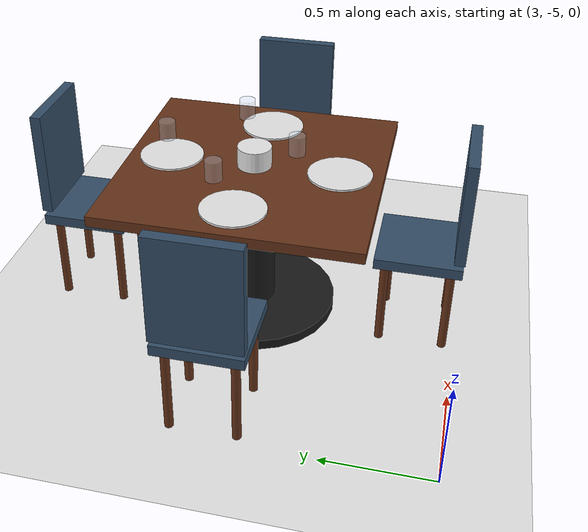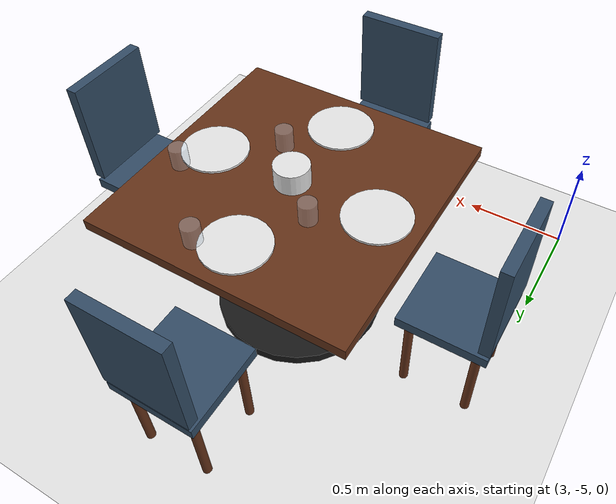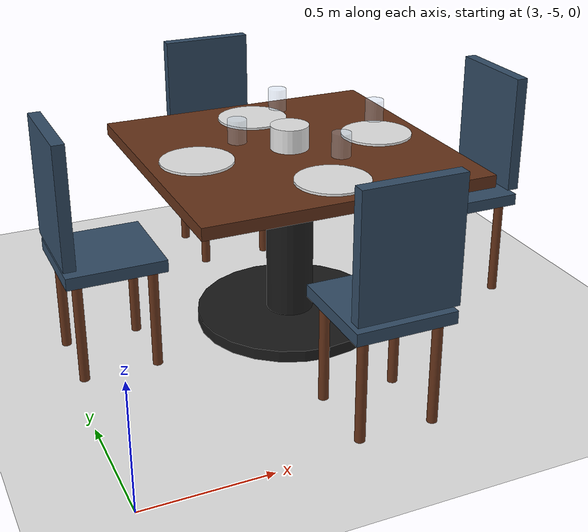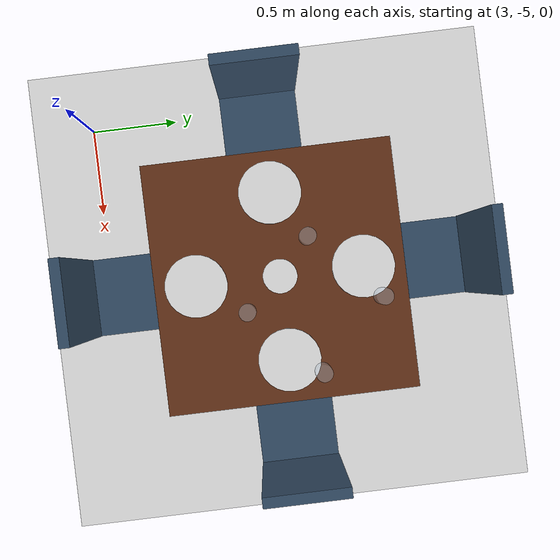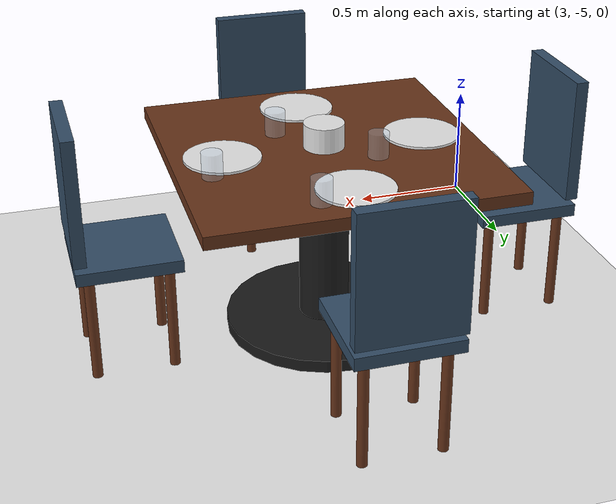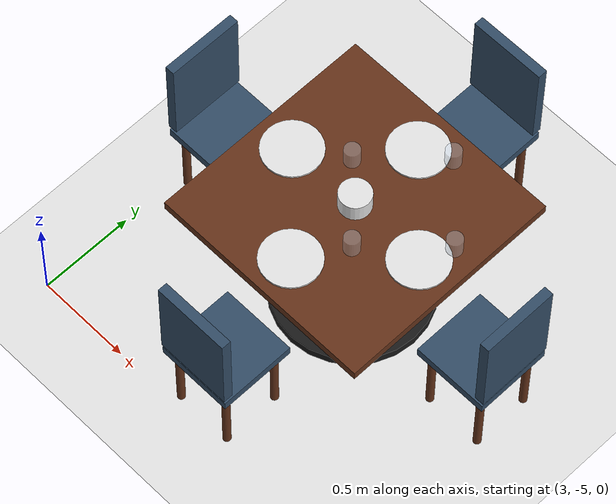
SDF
<sdf version="1.9">
 <world name="argo_restaurant">
  <model name="ground_plane">
   <static>true</static>
   <link name="link">
    <collision name="collision">
     <geometry><plane><normal>0 0 1</normal><size>100 100</size></plane></geometry>
    </collision>
    <visual name="visual">
     <geometry><plane><normal>0 0 1</normal><size>100 100</size></plane></geometry>
     <material>
      <ambient>0.9 0.9 0.9 1</ambient>
      <diffuse>0.9 0.9 0.9 1</diffuse>
      <specular>0.1 0.1 0.1 1</specular>
      <pbr><metal><roughness>0.1</roughness><metalness>0.0</metalness></metal></pbr>
     </material>
    </visual>
   </link>
  </model>
  <model name="table_2">
   <static>true</static>
   <link name="top_link">
    <pose>4.0 -4.0 0.75 0 0 0</pose>
    <collision name="top_collision"><geometry><box><size>1.2 1.2 0.05</size></box></geometry></collision>
    <visual name="top_visual">
     <geometry><box><size>1.2 1.2 0.05</size></box></geometry>
     <material>
      <ambient>0.4 0.2 0.1 1</ambient>
      <diffuse>0.4 0.2 0.1 1</diffuse>
      <specular>0.1 0.1 0.1 1</specular>
      <pbr><metal><roughness>0.7</roughness><metalness>0.1</metalness></metal></pbr>
     </material>
    </visual>
   </link>
   <link name="leg_link">
    <pose>4.0 -4.0 0.375 0 0 0</pose>
    <collision name="leg_collision">
     <geometry><cylinder><radius>0.1</radius><length>0.75</length></cylinder></geometry>
    </collision>
    <visual name="leg_visual">
     <geometry><cylinder><radius>0.1</radius><length>0.75</length></cylinder></geometry>
     <material>
      <ambient>0.1 0.1 0.1 1</ambient>
      <diffuse>0.1 0.1 0.1 1</diffuse>
      <specular>0.1 0.1 0.1 1</specular>
      <pbr><metal><roughness>0.5</roughness><metalness>0.0</metalness></metal></pbr>
     </material>
    </visual>
   </link>
   <link name="base_link">
    <pose>4.0 -4.0 0.025 0 0 0</pose>
    <collision name="base_collision">
     <geometry><cylinder><radius>0.4</radius><length>0.05</length></cylinder></geometry>
    </collision>
    <visual name="base_visual">
     <geometry><cylinder><radius>0.4</radius><length>0.05</length></cylinder></geometry>
     <material>
      <ambient>0.1 0.1 0.1 1</ambient>
      <diffuse>0.1 0.1 0.1 1</diffuse>
      <specular>0.1 0.1 0.1 1</specular>
      <pbr><metal><roughness>0.5</roughness><metalness>0.0</metalness></metal></pbr>
     </material>
    </visual>
   </link>
   <link name="chair_0_seat_link">
    <pose>4.0 -3.2 0.45 0 0 0</pose>
    <collision name="chair_0_seat_collision"><geometry><box><size>0.4 0.4 0.05</size></box></geometry></collision>
    <visual name="chair_0_seat_visual">
     <geometry><box><size>0.4 0.4 0.05</size></box></geometry>
     <material>
      <ambient>0.2 0.3 0.4 1</ambient>
      <diffuse>0.2 0.3 0.4 1</diffuse>
      <specular>0.1 0.1 0.1 1</specular>
      <pbr><metal><roughness>0.9</roughness><metalness>0.0</metalness></metal></pbr>
     </material>
    </visual>
   </link>
   <link name="chair_0_leg_-0.15_-0.15_link">
    <pose>3.85 -3.35 0.225 0 0 0</pose>
    <collision name="chair_0_leg_-0.15_-0.15_collision">
     <geometry><cylinder><radius>0.02</radius><length>0.45</length></cylinder></geometry>
    </collision>
    <visual name="chair_0_leg_-0.15_-0.15_visual">
     <geometry><cylinder><radius>0.02</radius><length>0.45</length></cylinder></geometry>
     <material>
      <ambient>0.4 0.2 0.1 1</ambient>
      <diffuse>0.4 0.2 0.1 1</diffuse>
      <specular>0.1 0.1 0.1 1</specular>
      <pbr><metal><roughness>0.7</roughness><metalness>0.1</metalness></metal></pbr>
     </material>
    </visual>
   </link>
   <link name="chair_0_leg_0.15_-0.15_link">
    <pose>4.15 -3.35 0.225 0 0 0</pose>
    <collision name="chair_0_leg_0.15_-0.15_collision">
     <geometry><cylinder><radius>0.02</radius><length>0.45</length></cylinder></geometry>
    </collision>
    <visual name="chair_0_leg_0.15_-0.15_visual">
     <geometry><cylinder><radius>0.02</radius><length>0.45</length></cylinder></geometry>
     <material>
      <ambient>0.4 0.2 0.1 1</ambient>
      <diffuse>0.4 0.2 0.1 1</diffuse>
      <specular>0.1 0.1 0.1 1</specular>
      <pbr><metal><roughness>0.7</roughness><metalness>0.1</metalness></metal></pbr>
     </material>
    </visual>
   </link>
   <link name="chair_0_leg_-0.15_0.15_link">
    <pose>3.85 -3.0500000000000003 0.225 0 0 0</pose>
    <collision name="chair_0_leg_-0.15_0.15_collision">
     <geometry><cylinder><radius>0.02</radius><length>0.45</length></cylinder></geometry>
    </collision>
    <visual name="chair_0_leg_-0.15_0.15_visual">
     <geometry><cylinder><radius>0.02</radius><length>0.45</length></cylinder></geometry>
     <material>
      <ambient>0.4 0.2 0.1 1</ambient>
      <diffuse>0.4 0.2 0.1 1</diffuse>
      <specular>0.1 0.1 0.1 1</specular>
      <pbr><metal><roughness>0.7</roughness><metalness>0.1</metalness></metal></pbr>
     </material>
    </visual>
   </link>
   <link name="chair_0_leg_0.15_0.15_link">
    <pose>4.15 -3.0500000000000003 0.225 0 0 0</pose>
    <collision name="chair_0_leg_0.15_0.15_collision">
     <geometry><cylinder><radius>0.02</radius><length>0.45</length></cylinder></geometry>
    </collision>
    <visual name="chair_0_leg_0.15_0.15_visual">
     <geometry><cylinder><radius>0.02</radius><length>0.45</length></cylinder></geometry>
     <material>
      <ambient>0.4 0.2 0.1 1</ambient>
      <diffuse>0.4 0.2 0.1 1</diffuse>
      <specular>0.1 0.1 0.1 1</specular>
      <pbr><metal><roughness>0.7</roughness><metalness>0.1</metalness></metal></pbr>
     </material>
    </visual>
   </link>
   <link name="chair_0_back_link">
    <pose>4.0 -3.02 0.75 0 0 0</pose>
    <collision name="chair_0_back_collision"><geometry><box><size>0.4 0.05 0.5</size></box></geometry></collision>
    <visual name="chair_0_back_visual">
     <geometry><box><size>0.4 0.05 0.5</size></box></geometry>
     <material>
      <ambient>0.2 0.3 0.4 1</ambient>
      <diffuse>0.2 0.3 0.4 1</diffuse>
      <specular>0.1 0.1 0.1 1</specular>
      <pbr><metal><roughness>0.9</roughness><metalness>0.0</metalness></metal></pbr>
     </material>
    </visual>
   </link>
   <link name="chair_1_seat_link">
    <pose>4.0 -4.8 0.45 0 0 3.1415</pose>
    <collision name="chair_1_seat_collision"><geometry><box><size>0.4 0.4 0.05</size></box></geometry></collision>
    <visual name="chair_1_seat_visual">
     <geometry><box><size>0.4 0.4 0.05</size></box></geometry>
     <material>
      <ambient>0.2 0.3 0.4 1</ambient>
      <diffuse>0.2 0.3 0.4 1</diffuse>
      <specular>0.1 0.1 0.1 1</specular>
      <pbr><metal><roughness>0.9</roughness><metalness>0.0</metalness></metal></pbr>
     </material>
    </visual>
   </link>
   <link name="chair_1_leg_-0.15_-0.15_link">
    <pose>3.85 -4.95 0.225 0 0 0</pose>
    <collision name="chair_1_leg_-0.15_-0.15_collision">
     <geometry><cylinder><radius>0.02</radius><length>0.45</length></cylinder></geometry>
    </collision>
    <visual name="chair_1_leg_-0.15_-0.15_visual">
     <geometry><cylinder><radius>0.02</radius><length>0.45</length></cylinder></geometry>
     <material>
      <ambient>0.4 0.2 0.1 1</ambient>
      <diffuse>0.4 0.2 0.1 1</diffuse>
      <specular>0.1 0.1 0.1 1</specular>
      <pbr><metal><roughness>0.7</roughness><metalness>0.1</metalness></metal></pbr>
     </material>
    </visual>
   </link>
   <link name="chair_1_leg_0.15_-0.15_link">
    <pose>4.15 -4.95 0.225 0 0 0</pose>
    <collision name="chair_1_leg_0.15_-0.15_collision">
     <geometry><cylinder><radius>0.02</radius><length>0.45</length></cylinder></geometry>
    </collision>
    <visual name="chair_1_leg_0.15_-0.15_visual">
     <geometry><cylinder><radius>0.02</radius><length>0.45</length></cylinder></geometry>
     <material>
      <ambient>0.4 0.2 0.1 1</ambient>
      <diffuse>0.4 0.2 0.1 1</diffuse>
      <specular>0.1 0.1 0.1 1</specular>
      <pbr><metal><roughness>0.7</roughness><metalness>0.1</metalness></metal></pbr>
     </material>
    </visual>
   </link>
   <link name="chair_1_leg_-0.15_0.15_link">
    <pose>3.85 -4.6499999999999995 0.225 0 0 0</pose>
    <collision name="chair_1_leg_-0.15_0.15_collision">
     <geometry><cylinder><radius>0.02</radius><length>0.45</length></cylinder></geometry>
    </collision>
    <visual name="chair_1_leg_-0.15_0.15_visual">
     <geometry><cylinder><radius>0.02</radius><length>0.45</length></cylinder></geometry>
     <material>
      <ambient>0.4 0.2 0.1 1</ambient>
      <diffuse>0.4 0.2 0.1 1</diffuse>
      <specular>0.1 0.1 0.1 1</specular>
      <pbr><metal><roughness>0.7</roughness><metalness>0.1</metalness></metal></pbr>
     </material>
    </visual>
   </link>
   <link name="chair_1_leg_0.15_0.15_link">
    <pose>4.15 -4.6499999999999995 0.225 0 0 0</pose>
    <collision name="chair_1_leg_0.15_0.15_collision">
     <geometry><cylinder><radius>0.02</radius><length>0.45</length></cylinder></geometry>
    </collision>
    <visual name="chair_1_leg_0.15_0.15_visual">
     <geometry><cylinder><radius>0.02</radius><length>0.45</length></cylinder></geometry>
     <material>
      <ambient>0.4 0.2 0.1 1</ambient>
      <diffuse>0.4 0.2 0.1 1</diffuse>
      <specular>0.1 0.1 0.1 1</specular>
      <pbr><metal><roughness>0.7</roughness><metalness>0.1</metalness></metal></pbr>
     </material>
    </visual>
   </link>
   <link name="chair_1_back_link">
    <pose>3.9999833223538612 -4.979999999227378 0.75 0 0 3.1415</pose>
    <collision name="chair_1_back_collision"><geometry><box><size>0.4 0.05 0.5</size></box></geometry></collision>
    <visual name="chair_1_back_visual">
     <geometry><box><size>0.4 0.05 0.5</size></box></geometry>
     <material>
      <ambient>0.2 0.3 0.4 1</ambient>
      <diffuse>0.2 0.3 0.4 1</diffuse>
      <specular>0.1 0.1 0.1 1</specular>
      <pbr><metal><roughness>0.9</roughness><metalness>0.0</metalness></metal></pbr>
     </material>
    </visual>
   </link>
   <link name="chair_2_seat_link">
    <pose>4.8 -4.0 0.45 0 0 -1.5707</pose>
    <collision name="chair_2_seat_collision"><geometry><box><size>0.4 0.4 0.05</size></box></geometry></collision>
    <visual name="chair_2_seat_visual">
     <geometry><box><size>0.4 0.4 0.05</size></box></geometry>
     <material>
      <ambient>0.2 0.3 0.4 1</ambient>
      <diffuse>0.2 0.3 0.4 1</diffuse>
      <specular>0.1 0.1 0.1 1</specular>
      <pbr><metal><roughness>0.9</roughness><metalness>0.0</metalness></metal></pbr>
     </material>
    </visual>
   </link>
   <link name="chair_2_leg_-0.15_-0.15_link">
    <pose>4.6499999999999995 -4.15 0.225 0 0 0</pose>
    <collision name="chair_2_leg_-0.15_-0.15_collision">
     <geometry><cylinder><radius>0.02</radius><length>0.45</length></cylinder></geometry>
    </collision>
    <visual name="chair_2_leg_-0.15_-0.15_visual">
     <geometry><cylinder><radius>0.02</radius><length>0.45</length></cylinder></geometry>
     <material>
      <ambient>0.4 0.2 0.1 1</ambient>
      <diffuse>0.4 0.2 0.1 1</diffuse>
      <specular>0.1 0.1 0.1 1</specular>
      <pbr><metal><roughness>0.7</roughness><metalness>0.1</metalness></metal></pbr>
     </material>
    </visual>
   </link>
   <link name="chair_2_leg_0.15_-0.15_link">
    <pose>4.95 -4.15 0.225 0 0 0</pose>
    <collision name="chair_2_leg_0.15_-0.15_collision">
     <geometry><cylinder><radius>0.02</radius><length>0.45</length></cylinder></geometry>
    </collision>
    <visual name="chair_2_leg_0.15_-0.15_visual">
     <geometry><cylinder><radius>0.02</radius><length>0.45</length></cylinder></geometry>
     <material>
      <ambient>0.4 0.2 0.1 1</ambient>
      <diffuse>0.4 0.2 0.1 1</diffuse>
      <specular>0.1 0.1 0.1 1</specular>
      <pbr><metal><roughness>0.7</roughness><metalness>0.1</metalness></metal></pbr>
     </material>
    </visual>
   </link>
   <link name="chair_2_leg_-0.15_0.15_link">
    <pose>4.6499999999999995 -3.85 0.225 0 0 0</pose>
    <collision name="chair_2_leg_-0.15_0.15_collision">
     <geometry><cylinder><radius>0.02</radius><length>0.45</length></cylinder></geometry>
    </collision>
    <visual name="chair_2_leg_-0.15_0.15_visual">
     <geometry><cylinder><radius>0.02</radius><length>0.45</length></cylinder></geometry>
     <material>
      <ambient>0.4 0.2 0.1 1</ambient>
      <diffuse>0.4 0.2 0.1 1</diffuse>
      <specular>0.1 0.1 0.1 1</specular>
      <pbr><metal><roughness>0.7</roughness><metalness>0.1</metalness></metal></pbr>
     </material>
    </visual>
   </link>
   <link name="chair_2_leg_0.15_0.15_link">
    <pose>4.95 -3.85 0.225 0 0 0</pose>
    <collision name="chair_2_leg_0.15_0.15_collision">
     <geometry><cylinder><radius>0.02</radius><length>0.45</length></cylinder></geometry>
    </collision>
    <visual name="chair_2_leg_0.15_0.15_visual">
     <geometry><cylinder><radius>0.02</radius><length>0.45</length></cylinder></geometry>
     <material>
      <ambient>0.4 0.2 0.1 1</ambient>
      <diffuse>0.4 0.2 0.1 1</diffuse>
      <specular>0.1 0.1 0.1 1</specular>
      <pbr><metal><roughness>0.7</roughness><metalness>0.1</metalness></metal></pbr>
     </material>
    </visual>
   </link>
   <link name="chair_2_back_link">
    <pose>4.979999999164903 -3.9999826611769453 0.75 0 0 -1.5707</pose>
    <collision name="chair_2_back_collision"><geometry><box><size>0.4 0.05 0.5</size></box></geometry></collision>
    <visual name="chair_2_back_visual">
     <geometry><box><size>0.4 0.05 0.5</size></box></geometry>
     <material>
      <ambient>0.2 0.3 0.4 1</ambient>
      <diffuse>0.2 0.3 0.4 1</diffuse>
      <specular>0.1 0.1 0.1 1</specular>
      <pbr><metal><roughness>0.9</roughness><metalness>0.0</metalness></metal></pbr>
     </material>
    </visual>
   </link>
   <link name="chair_3_seat_link">
    <pose>3.2 -4.0 0.45 0 0 1.5707</pose>
    <collision name="chair_3_seat_collision"><geometry><box><size>0.4 0.4 0.05</size></box></geometry></collision>
    <visual name="chair_3_seat_visual">
     <geometry><box><size>0.4 0.4 0.05</size></box></geometry>
     <material>
      <ambient>0.2 0.3 0.4 1</ambient>
      <diffuse>0.2 0.3 0.4 1</diffuse>
      <specular>0.1 0.1 0.1 1</specular>
      <pbr><metal><roughness>0.9</roughness><metalness>0.0</metalness></metal></pbr>
     </material>
    </visual>
   </link>
   <link name="chair_3_leg_-0.15_-0.15_link">
    <pose>3.0500000000000003 -4.15 0.225 0 0 0</pose>
    <collision name="chair_3_leg_-0.15_-0.15_collision">
     <geometry><cylinder><radius>0.02</radius><length>0.45</length></cylinder></geometry>
    </collision>
    <visual name="chair_3_leg_-0.15_-0.15_visual">
     <geometry><cylinder><radius>0.02</radius><length>0.45</length></cylinder></geometry>
     <material>
      <ambient>0.4 0.2 0.1 1</ambient>
      <diffuse>0.4 0.2 0.1 1</diffuse>
      <specular>0.1 0.1 0.1 1</specular>
      <pbr><metal><roughness>0.7</roughness><metalness>0.1</metalness></metal></pbr>
     </material>
    </visual>
   </link>
   <link name="chair_3_leg_0.15_-0.15_link">
    <pose>3.35 -4.15 0.225 0 0 0</pose>
    <collision name="chair_3_leg_0.15_-0.15_collision">
     <geometry><cylinder><radius>0.02</radius><length>0.45</length></cylinder></geometry>
    </collision>
    <visual name="chair_3_leg_0.15_-0.15_visual">
     <geometry><cylinder><radius>0.02</radius><length>0.45</length></cylinder></geometry>
     <material>
      <ambient>0.4 0.2 0.1 1</ambient>
      <diffuse>0.4 0.2 0.1 1</diffuse>
      <specular>0.1 0.1 0.1 1</specular>
      <pbr><metal><roughness>0.7</roughness><metalness>0.1</metalness></metal></pbr>
     </material>
    </visual>
   </link>
   <link name="chair_3_leg_-0.15_0.15_link">
    <pose>3.0500000000000003 -3.85 0.225 0 0 0</pose>
    <collision name="chair_3_leg_-0.15_0.15_collision">
     <geometry><cylinder><radius>0.02</radius><length>0.45</length></cylinder></geometry>
    </collision>
    <visual name="chair_3_leg_-0.15_0.15_visual">
     <geometry><cylinder><radius>0.02</radius><length>0.45</length></cylinder></geometry>
     <material>
      <ambient>0.4 0.2 0.1 1</ambient>
      <diffuse>0.4 0.2 0.1 1</diffuse>
      <specular>0.1 0.1 0.1 1</specular>
      <pbr><metal><roughness>0.7</roughness><metalness>0.1</metalness></metal></pbr>
     </material>
    </visual>
   </link>
   <link name="chair_3_leg_0.15_0.15_link">
    <pose>3.35 -3.85 0.225 0 0 0</pose>
    <collision name="chair_3_leg_0.15_0.15_collision">
     <geometry><cylinder><radius>0.02</radius><length>0.45</length></cylinder></geometry>
    </collision>
    <visual name="chair_3_leg_0.15_0.15_visual">
     <geometry><cylinder><radius>0.02</radius><length>0.45</length></cylinder></geometry>
     <material>
      <ambient>0.4 0.2 0.1 1</ambient>
      <diffuse>0.4 0.2 0.1 1</diffuse>
      <specular>0.1 0.1 0.1 1</specular>
      <pbr><metal><roughness>0.7</roughness><metalness>0.1</metalness></metal></pbr>
     </material>
    </visual>
   </link>
   <link name="chair_3_back_link">
    <pose>3.020000000835097 -3.9999826611769453 0.75 0 0 1.5707</pose>
    <collision name="chair_3_back_collision"><geometry><box><size>0.4 0.05 0.5</size></box></geometry></collision>
    <visual name="chair_3_back_visual">
     <geometry><box><size>0.4 0.05 0.5</size></box></geometry>
     <material>
      <ambient>0.2 0.3 0.4 1</ambient>
      <diffuse>0.2 0.3 0.4 1</diffuse>
      <specular>0.1 0.1 0.1 1</specular>
      <pbr><metal><roughness>0.9</roughness><metalness>0.0</metalness></metal></pbr>
     </material>
    </visual>
   </link>
   <link name="centerpiece_pot_link">
    <pose>4.0 -4.0 0.825 0 0 0</pose>
    <collision name="centerpiece_pot_collision">
     <geometry><cylinder><radius>0.08</radius><length>0.1</length></cylinder></geometry>
    </collision>
    <visual name="centerpiece_pot_visual">
     <geometry><cylinder><radius>0.08</radius><length>0.1</length></cylinder></geometry>
     <material>
      <ambient>0.9 0.9 0.9 1</ambient>
      <diffuse>0.9 0.9 0.9 1</diffuse>
      <specular>0.1 0.1 0.1 1</specular>
      <pbr><metal><roughness>0.2</roughness><metalness>0.0</metalness></metal></pbr>
     </material>
    </visual>
   </link>
   <link name="plate_0_link">
    <pose>4.0 -3.6 0.78 0 0 0</pose>
    <collision name="plate_0_collision">
     <geometry><cylinder><radius>0.15</radius><length>0.01</length></cylinder></geometry>
    </collision>
    <visual name="plate_0_visual">
     <geometry><cylinder><radius>0.15</radius><length>0.01</length></cylinder></geometry>
     <material>
      <ambient>0.9 0.9 0.9 1</ambient>
      <diffuse>0.9 0.9 0.9 1</diffuse>
      <specular>0.1 0.1 0.1 1</specular>
      <pbr><metal><roughness>0.2</roughness><metalness>0.0</metalness></metal></pbr>
     </material>
    </visual>
   </link>
   <link name="glass_0_link">
    <pose>4.15 -3.53 0.825 0 0 0</pose>
    <collision name="glass_0_collision">
     <geometry><cylinder><radius>0.04</radius><length>0.1</length></cylinder></geometry>
    </collision>
    <visual name="glass_0_visual">
     <geometry><cylinder><radius>0.04</radius><length>0.1</length></cylinder></geometry>
     <material>
      <ambient>0.8 0.9 1.0 0.3</ambient>
      <diffuse>0.8 0.9 1.0 0.3</diffuse>
      <specular>0.9 0.9 0.9 1</specular>
      <pbr><metal><roughness>0.0</roughness><metalness>0.9</metalness></metal></pbr>
     </material>
    </visual>
   </link>
   <link name="plate_1_link">
    <pose>4.0 -4.4 0.78 0 0 0</pose>
    <collision name="plate_1_collision">
     <geometry><cylinder><radius>0.15</radius><length>0.01</length></cylinder></geometry>
    </collision>
    <visual name="plate_1_visual">
     <geometry><cylinder><radius>0.15</radius><length>0.01</length></cylinder></geometry>
     <material>
      <ambient>0.9 0.9 0.9 1</ambient>
      <diffuse>0.9 0.9 0.9 1</diffuse>
      <specular>0.1 0.1 0.1 1</specular>
      <pbr><metal><roughness>0.2</roughness><metalness>0.0</metalness></metal></pbr>
     </material>
    </visual>
   </link>
   <link name="glass_1_link">
    <pose>4.15 -4.17 0.825 0 0 0</pose>
    <collision name="glass_1_collision">
     <geometry><cylinder><radius>0.04</radius><length>0.1</length></cylinder></geometry>
    </collision>
    <visual name="glass_1_visual">
     <geometry><cylinder><radius>0.04</radius><length>0.1</length></cylinder></geometry>
     <material>
      <ambient>0.8 0.9 1.0 0.3</ambient>
      <diffuse>0.8 0.9 1.0 0.3</diffuse>
      <specular>0.9 0.9 0.9 1</specular>
      <pbr><metal><roughness>0.0</roughness><metalness>0.9</metalness></metal></pbr>
     </material>
    </visual>
   </link>
   <link name="plate_2_link">
    <pose>4.4 -4.0 0.78 0 0 0</pose>
    <collision name="plate_2_collision">
     <geometry><cylinder><radius>0.15</radius><length>0.01</length></cylinder></geometry>
    </collision>
    <visual name="plate_2_visual">
     <geometry><cylinder><radius>0.15</radius><length>0.01</length></cylinder></geometry>
     <material>
      <ambient>0.9 0.9 0.9 1</ambient>
      <diffuse>0.9 0.9 0.9 1</diffuse>
      <specular>0.1 0.1 0.1 1</specular>
      <pbr><metal><roughness>0.2</roughness><metalness>0.0</metalness></metal></pbr>
     </material>
    </visual>
   </link>
   <link name="glass_2_link">
    <pose>4.47 -3.85 0.825 0 0 0</pose>
    <collision name="glass_2_collision">
     <geometry><cylinder><radius>0.04</radius><length>0.1</length></cylinder></geometry>
    </collision>
    <visual name="glass_2_visual">
     <geometry><cylinder><radius>0.04</radius><length>0.1</length></cylinder></geometry>
     <material>
      <ambient>0.8 0.9 1.0 0.3</ambient>
      <diffuse>0.8 0.9 1.0 0.3</diffuse>
      <specular>0.9 0.9 0.9 1</specular>
      <pbr><metal><roughness>0.0</roughness><metalness>0.9</metalness></metal></pbr>
     </material>
    </visual>
   </link>
   <link name="plate_3_link">
    <pose>3.6 -4.0 0.78 0 0 0</pose>
    <collision name="plate_3_collision">
     <geometry><cylinder><radius>0.15</radius><length>0.01</length></cylinder></geometry>
    </collision>
    <visual name="plate_3_visual">
     <geometry><cylinder><radius>0.15</radius><length>0.01</length></cylinder></geometry>
     <material>
      <ambient>0.9 0.9 0.9 1</ambient>
      <diffuse>0.9 0.9 0.9 1</diffuse>
      <specular>0.1 0.1 0.1 1</specular>
      <pbr><metal><roughness>0.2</roughness><metalness>0.0</metalness></metal></pbr>
     </material>
    </visual>
   </link>
   <link name="glass_3_link">
    <pose>3.83 -3.85 0.825 0 0 0</pose>
    <collision name="glass_3_collision">
     <geometry><cylinder><radius>0.04</radius><length>0.1</length></cylinder></geometry>
    </collision>
    <visual name="glass_3_visual">
     <geometry><cylinder><radius>0.04</radius><length>0.1</length></cylinder></geometry>
     <material>
      <ambient>0.8 0.9 1.0 0.3</ambient>
      <diffuse>0.8 0.9 1.0 0.3</diffuse>
      <specular>0.9 0.9 0.9 1</specular>
      <pbr><metal><roughness>0.0</roughness><metalness>0.9</metalness></metal></pbr>
     </material>
    </visual>
   </link>
  </model>
 </world>
</sdf>
